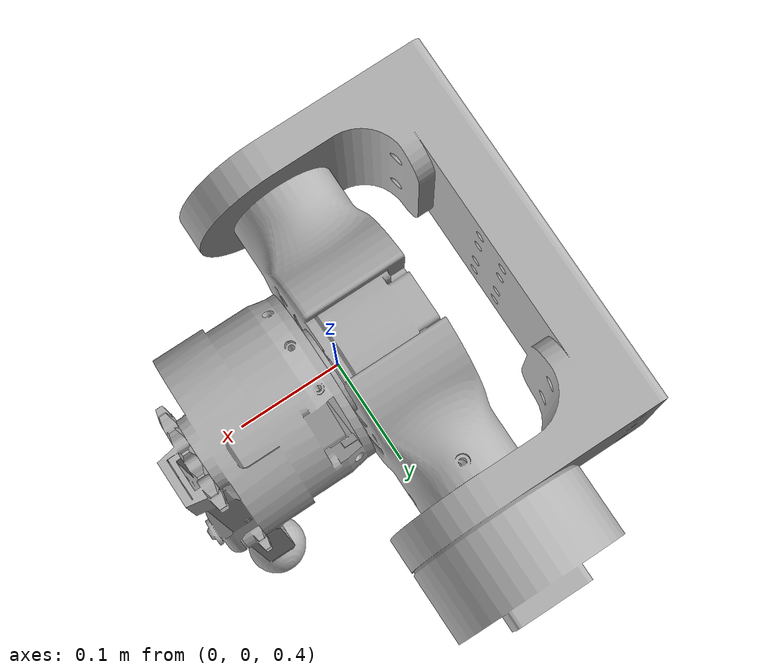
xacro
<?xml version="1.0" ?>
<robot name="legv1" xmlns:xacro="http://www.ros.org/wiki/xacro">

<xacro:include filename="$(find legv1_description)/urdf/materials.xacro" />
<xacro:include filename="$(find legv1_description)/urdf/legv1.trans" />
<xacro:include filename="$(find legv1_description)/urdf/legv1.gazebo" />
<link name="base_link">
  <inertial>
    <origin xyz="-0.028857221307361923 0.1343117814431556 0.0008989854121047182" rpy="0 0 0"/>
    <mass value="11.855803320660563"/>
    <inertia ixx="0.105237" iyy="0.031981" izz="0.118107" ixy="-0.017641" iyz="0.000162" ixz="5.7e-05"/>
  </inertial>
  <visual>
    <origin xyz="0 0 0" rpy="0 0 0"/>
    <geometry>
      <mesh filename="package://legv1_description/meshes/base_link.stl" scale="0.001 0.001 0.001"/>
    </geometry>
    <material name="silver"/>
  </visual>
  <collision>
    <origin xyz="0 0 0" rpy="0 0 0"/>
    <geometry>
      <mesh filename="package://legv1_description/meshes/base_link.stl" scale="0.001 0.001 0.001"/>
    </geometry>
  </collision>
</link>

<link name="p1_1">
  <inertial>
    <origin xyz="-0.0005213946878042525 0.1080808989382492 -0.0015090338883853047" rpy="0 0 0"/>
    <mass value="6.728138654734345"/>
    <inertia ixx="0.021295" iyy="0.006245" izz="0.018512" ixy="5e-06" iyz="1.9e-05" ixz="-3.6e-05"/>
  </inertial>
  <visual>
    <origin xyz="-0.016805 0.008773 -0.001005" rpy="0 0 0"/>
    <geometry>
      <mesh filename="package://legv1_description/meshes/p1_1.stl" scale="0.001 0.001 0.001"/>
    </geometry>
    <material name="silver"/>
  </visual>
  <collision>
    <origin xyz="-0.016805 0.008773 -0.001005" rpy="0 0 0"/>
    <geometry>
      <mesh filename="package://legv1_description/meshes/p1_1.stl" scale="0.001 0.001 0.001"/>
    </geometry>
  </collision>
</link>

<link name="p2_1">
  <inertial>
    <origin xyz="0.05592720601521054 -0.0003781206160873435 -0.0411183088483893" rpy="0 0 0"/>
    <mass value="5.946076526680729"/>
    <inertia ixx="0.052025" iyy="0.052833" izz="0.007159" ixy="-6.8e-05" iyz="0.000122" ixz="0.007698"/>
  </inertial>
  <visual>
    <origin xyz="-0.040155 -0.101227 -0.001005" rpy="0 0 0"/>
    <geometry>
      <mesh filename="package://legv1_description/meshes/p2_1.stl" scale="0.001 0.001 0.001"/>
    </geometry>
    <material name="silver"/>
  </visual>
  <collision>
    <origin xyz="-0.040155 -0.101227 -0.001005" rpy="0 0 0"/>
    <geometry>
      <mesh filename="package://legv1_description/meshes/p2_1.stl" scale="0.001 0.001 0.001"/>
    </geometry>
  </collision>
</link>

<link name="p3_1">
  <inertial>
    <origin xyz="-0.012786027823721458 0.00036954584020434944 -0.17468535196255708" rpy="0 0 0"/>
    <mass value="1.6403053813281432"/>
    <inertia ixx="0.023887" iyy="0.02385" izz="0.000303" ixy="0.0" iyz="4.9e-05" ixz="-1e-06"/>
  </inertial>
  <visual>
    <origin xyz="-0.142267 -0.100977 0.305595" rpy="0 0 0"/>
    <geometry>
      <mesh filename="package://legv1_description/meshes/p3_1.stl" scale="0.001 0.001 0.001"/>
    </geometry>
    <material name="silver"/>
  </visual>
  <collision>
    <origin xyz="-0.142267 -0.100977 0.305595" rpy="0 0 0"/>
    <geometry>
      <mesh filename="package://legv1_description/meshes/p3_1.stl" scale="0.001 0.001 0.001"/>
    </geometry>
  </collision>
</link>

<link name = "world"/>
<link name = "foot"/>

<joint name="slider" type="prismatic">
  <origin xyz="0 0 1" rpy="0 0 0"/>
  <parent link="world"/>
  <child link="base_link"/>
  <axis xyz="0.0 0.0 1"/>
  <limit effort="100" lower="-10" upper="10" velocity="100"/>
</joint>

<joint name="j1" type="continuous">
  <origin xyz="0.016805 -0.008773 0.001005" rpy="0 0 0"/>
  <parent link="base_link"/>
  <child link="p1_1"/>
  <axis xyz="0.0 1.0 -0.0"/>
</joint>

<joint name="j2" type="continuous">
  <origin xyz="0.02335 0.11 0.0" rpy="0 0 0"/>
  <parent link="p1_1"/>
  <child link="p2_1"/>
  <axis xyz="1.0 -0.0 -0.0"/>
</joint>

<joint name="j3" type="continuous">
  <origin xyz="0.102112 -0.00025 -0.3066" rpy="0 0 0"/>
  <parent link="p2_1"/>
  <child link="p3_1"/>
  <axis xyz="-1.0 0.0 -0.0"/>
</joint>

<joint name="jfoot" type="fixed">
  <origin xyz="-.015 0 -.325" rpy="0 0 0"/>
  <parent link="p3_1"/>
  <child link="foot"/>
</joint>

</robot>

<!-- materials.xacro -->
<robot name="legv1" xmlns:xacro="http://www.ros.org/wiki/xacro" >

<material name="silver">
  <color rgba="0.700 0.700 0.700 1.000"/>
</material>

</robot>

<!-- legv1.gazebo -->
<robot name="legv1" xmlns:xacro="http://www.ros.org/wiki/xacro" >

<xacro:property name="body_color" value="Gazebo/Silver" />

<gazebo>
  <plugin name="gazebo_ros_control" filename="libgazebo_ros_control.so">
    <robotNamespace>/legv1</robotNamespace>
  </plugin>
</gazebo>

<gazebo reference="base_link">
  <material>${body_color}</material>
  <mu1>0.2</mu1>
  <mu2>0.2</mu2>
  <selfCollide>true</selfCollide>
  <gravity>true</gravity>
</gazebo>

<gazebo reference="p1_1">
  <material>${body_color}</material>
  <mu1>0.2</mu1>
  <mu2>0.2</mu2>
  <selfCollide>true</selfCollide>
</gazebo>

<gazebo reference="p2_1">
  <material>${body_color}</material>
  <mu1>0.2</mu1>
  <mu2>0.2</mu2>
  <selfCollide>true</selfCollide>
</gazebo>

<gazebo reference="p3_1">
  <material>${body_color}</material>
  <mu1>0.2</mu1>
  <mu2>0.2</mu2>
  <selfCollide>true</selfCollide>
</gazebo>

</robot>
